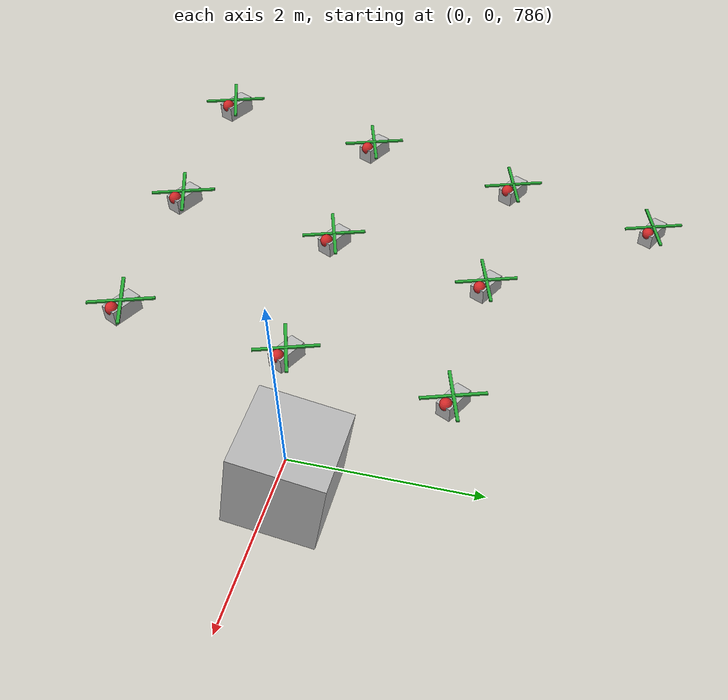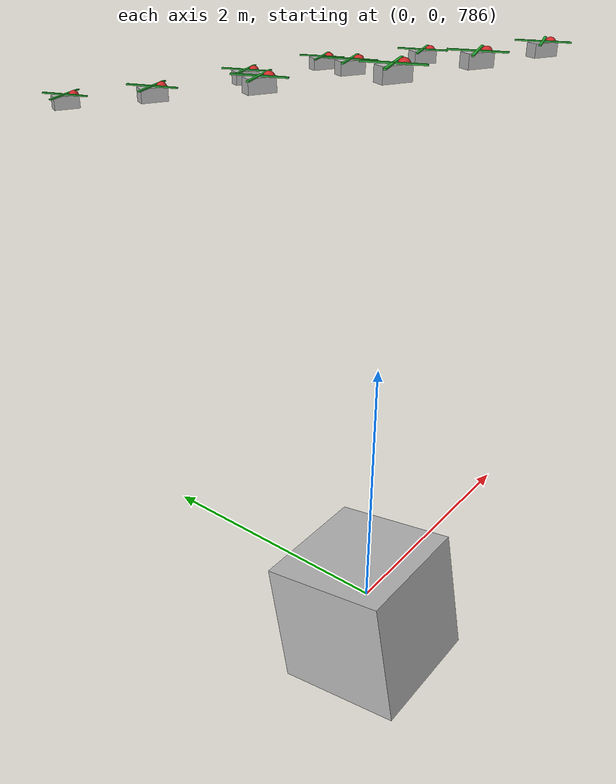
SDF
<sdf version="1.5">
 <world name="default">
  <model name="boo">
   <pose>0 0 785.866 -0.185171 0 0</pose>
   <static>1</static>
   <link name="link">
    <kinematic>1</kinematic>
    <collision name="collision">
     <geometry><box><size>1 1 1</size></box></geometry>
     <surface><friction><ode><mu>0</mu><mu2>0</mu2></ode></friction></surface>
    </collision>
    <visual name="visual"><geometry><box><size>1 1 1</size></box></geometry></visual>
   </link>
   <plugin name="boo" filename="libBooControllerPlugin.so">
    <lost_person_model>lost_person</lost_person_model>
    <address>boo</address>
    <type>boo</type>
    <swarm_search_area>
     <min_relative_latitude_deg>-0.01</min_relative_latitude_deg>
     <max_relative_latitude_deg>0.01</max_relative_latitude_deg>
     <min_relative_longitude_deg>-0.01</min_relative_longitude_deg>
     <max_relative_longitude_deg>0.01</max_relative_longitude_deg>
    </swarm_search_area>
   </plugin>
  </model>
  <model name="rotor_0">
   <pose>0 0 789.936 0 0 -0.452</pose>
   <link name="link">
    <sensor name="gps" type="gps">
     <gps>
      <position_sensing>
       <horizontal>
        <noise type="gaussian_quantized">
         <mean>0</mean>
         <stddev>4</stddev>
         <bias_mean>0</bias_mean>
         <bias_stddev>0</bias_stddev>
         <precision>0.001</precision>
        </noise>
       </horizontal>
       <vertical>
        <noise type="gaussian_quantized">
         <mean>0</mean>
         <stddev>8</stddev>
         <bias_mean>0</bias_mean>
         <bias_stddev>0</bias_stddev>
         <precision>0.01</precision>
        </noise>
       </vertical>
      </position_sensing>
      <velocity_sensing>
       <horizontal>
        <noise type="gaussian_quantized">
         <mean>0</mean>
         <stddev>4</stddev>
         <bias_mean>0</bias_mean>
         <bias_stddev>0</bias_stddev>
         <precision>0.001</precision>
        </noise>
       </horizontal>
       <vertical>
        <noise type="gaussian_quantized">
         <mean>0</mean>
         <stddev>8</stddev>
         <bias_mean>0</bias_mean>
         <bias_stddev>0</bias_stddev>
         <precision>0.01</precision>
        </noise>
       </vertical>
      </velocity_sensing>
     </gps>
     <always_on>1</always_on>
    </sensor>
    <sensor name="imu" type="imu">
     <imu>
      <angular_velocity>
       <x>
        <noise type="gaussian">
         <mean>0</mean>
         <stddev>0.0002</stddev>
         <bias_mean>7.5e-06</bias_mean>
         <bias_stddev>8e-07</bias_stddev>
        </noise>
       </x>
       <y>
        <noise type="gaussian">
         <mean>0</mean>
         <stddev>0.0002</stddev>
         <bias_mean>7.5e-06</bias_mean>
         <bias_stddev>8e-07</bias_stddev>
        </noise>
       </y>
       <z>
        <noise type="gaussian">
         <mean>0</mean>
         <stddev>0.0002</stddev>
         <bias_mean>7.5e-06</bias_mean>
         <bias_stddev>8e-07</bias_stddev>
        </noise>
       </z>
      </angular_velocity>
      <linear_acceleration>
       <x>
        <noise type="gaussian">
         <mean>0</mean>
         <stddev>0.0002</stddev>
         <bias_mean>7.5e-06</bias_mean>
         <bias_stddev>8e-07</bias_stddev>
        </noise>
       </x>
       <y>
        <noise type="gaussian">
         <mean>0</mean>
         <stddev>0.0002</stddev>
         <bias_mean>7.5e-06</bias_mean>
         <bias_stddev>8e-07</bias_stddev>
        </noise>
       </y>
       <z>
        <noise type="gaussian">
         <mean>0</mean>
         <stddev>0.0002</stddev>
         <bias_mean>7.5e-06</bias_mean>
         <bias_stddev>8e-07</bias_stddev>
        </noise>
       </z>
      </linear_acceleration>
     </imu>
     <always_on>1</always_on>
    </sensor>
    <sensor name="camera" type="logical_camera">
     <logical_camera>
      <near>0.1</near>
      <far>50</far>
      <horizontal_fov>1.4656</horizontal_fov>
      <aspect_ratio>1.778</aspect_ratio>
     </logical_camera>
     <visualize>0</visualize>
     <always_on>1</always_on>
    </sensor>
    <kinematic>1</kinematic>
    <gravity>0</gravity>
    <collision name="collision"><geometry><box><size>0.2 0.1 0.1</size></box></geometry></collision>
    <visual name="visual"><geometry><box><size>0.2 0.1 0.1</size></box></geometry></visual>
    <visual name="visual_front">
     <pose>0.07 0 0.04 0 -0 0</pose>
     <geometry><sphere><radius>0.04</radius></sphere></geometry>
     <material><script><name>Gazebo/Red</name><uri>__default__</uri></script></material>
    </visual>
    <visual name="visual_blade1">
     <pose>0 0 0.055 0 -0 0.78539</pose>
     <geometry><box><size>0.4 0.02 0.01</size></box></geometry>
     <material><script><name>Gazebo/Green</name><uri>__default__</uri></script></material>
    </visual>
    <visual name="visual_blade2">
     <pose>0 0 0.055 0 -0 2.3562</pose>
     <geometry><box><size>0.4 0.02 0.01</size></box></geometry>
     <material><script><name>Gazebo/Green</name><uri>__default__</uri></script></material>
    </visual>
    <inertial>
     <inertia><ixx>1</ixx><ixy>0</ixy><ixz>0</ixz><iyy>1</iyy><iyz>0</iyz><izz>1</izz></inertia>
     <mass>1</mass>
    </inertial>
   </link>
   <plugin name="swarm_controller_rotor_0" filename="libTeamControllerPlugin.so">
    <type>rotor</type>
    <camera>link::camera</camera>
    <gps>link::gps</gps>
    <imu>link::imu</imu>
    <address>192.168.1.1</address>
    <num_messages>1</num_messages>
    <swarm_search_area>
     <min_relative_latitude_deg>-0.01</min_relative_latitude_deg>
     <max_relative_latitude_deg>0.01</max_relative_latitude_deg>
     <min_relative_longitude_deg>-0.01</min_relative_longitude_deg>
     <max_relative_longitude_deg>0.01</max_relative_longitude_deg>
    </swarm_search_area>
    <battery>
     <capacity>3500</capacity>
     <consumption>1500</consumption>
     <consumption_factor>0.8</consumption_factor>
    </battery>
   </plugin>
  </model>
  <model name="rotor_1">
   <pose>1 0 789.873 0 0 -0.452</pose>
   <link name="link">
    <sensor name="gps" type="gps">
     <gps>
      <position_sensing>
       <horizontal>
        <noise type="gaussian_quantized">
         <mean>0</mean>
         <stddev>4</stddev>
         <bias_mean>0</bias_mean>
         <bias_stddev>0</bias_stddev>
         <precision>0.001</precision>
        </noise>
       </horizontal>
       <vertical>
        <noise type="gaussian_quantized">
         <mean>0</mean>
         <stddev>8</stddev>
         <bias_mean>0</bias_mean>
         <bias_stddev>0</bias_stddev>
         <precision>0.01</precision>
        </noise>
       </vertical>
      </position_sensing>
      <velocity_sensing>
       <horizontal>
        <noise type="gaussian_quantized">
         <mean>0</mean>
         <stddev>4</stddev>
         <bias_mean>0</bias_mean>
         <bias_stddev>0</bias_stddev>
         <precision>0.001</precision>
        </noise>
       </horizontal>
       <vertical>
        <noise type="gaussian_quantized">
         <mean>0</mean>
         <stddev>8</stddev>
         <bias_mean>0</bias_mean>
         <bias_stddev>0</bias_stddev>
         <precision>0.01</precision>
        </noise>
       </vertical>
      </velocity_sensing>
     </gps>
     <always_on>1</always_on>
    </sensor>
    <sensor name="imu" type="imu">
     <imu>
      <angular_velocity>
       <x>
        <noise type="gaussian">
         <mean>0</mean>
         <stddev>0.0002</stddev>
         <bias_mean>7.5e-06</bias_mean>
         <bias_stddev>8e-07</bias_stddev>
        </noise>
       </x>
       <y>
        <noise type="gaussian">
         <mean>0</mean>
         <stddev>0.0002</stddev>
         <bias_mean>7.5e-06</bias_mean>
         <bias_stddev>8e-07</bias_stddev>
        </noise>
       </y>
       <z>
        <noise type="gaussian">
         <mean>0</mean>
         <stddev>0.0002</stddev>
         <bias_mean>7.5e-06</bias_mean>
         <bias_stddev>8e-07</bias_stddev>
        </noise>
       </z>
      </angular_velocity>
      <linear_acceleration>
       <x>
        <noise type="gaussian">
         <mean>0</mean>
         <stddev>0.0002</stddev>
         <bias_mean>7.5e-06</bias_mean>
         <bias_stddev>8e-07</bias_stddev>
        </noise>
       </x>
       <y>
        <noise type="gaussian">
         <mean>0</mean>
         <stddev>0.0002</stddev>
         <bias_mean>7.5e-06</bias_mean>
         <bias_stddev>8e-07</bias_stddev>
        </noise>
       </y>
       <z>
        <noise type="gaussian">
         <mean>0</mean>
         <stddev>0.0002</stddev>
         <bias_mean>7.5e-06</bias_mean>
         <bias_stddev>8e-07</bias_stddev>
        </noise>
       </z>
      </linear_acceleration>
     </imu>
     <always_on>1</always_on>
    </sensor>
    <sensor name="camera" type="logical_camera">
     <logical_camera>
      <near>0.1</near>
      <far>50</far>
      <horizontal_fov>1.4656</horizontal_fov>
      <aspect_ratio>1.778</aspect_ratio>
     </logical_camera>
     <visualize>0</visualize>
     <always_on>1</always_on>
    </sensor>
    <kinematic>1</kinematic>
    <gravity>0</gravity>
    <collision name="collision"><geometry><box><size>0.2 0.1 0.1</size></box></geometry></collision>
    <visual name="visual"><geometry><box><size>0.2 0.1 0.1</size></box></geometry></visual>
    <visual name="visual_front">
     <pose>0.07 0 0.04 0 -0 0</pose>
     <geometry><sphere><radius>0.04</radius></sphere></geometry>
     <material><script><name>Gazebo/Red</name><uri>__default__</uri></script></material>
    </visual>
    <visual name="visual_blade1">
     <pose>0 0 0.055 0 -0 0.78539</pose>
     <geometry><box><size>0.4 0.02 0.01</size></box></geometry>
     <material><script><name>Gazebo/Green</name><uri>__default__</uri></script></material>
    </visual>
    <visual name="visual_blade2">
     <pose>0 0 0.055 0 -0 2.3562</pose>
     <geometry><box><size>0.4 0.02 0.01</size></box></geometry>
     <material><script><name>Gazebo/Green</name><uri>__default__</uri></script></material>
    </visual>
    <inertial>
     <inertia><ixx>1</ixx><ixy>0</ixy><ixz>0</ixz><iyy>1</iyy><iyz>0</iyz><izz>1</izz></inertia>
     <mass>1</mass>
    </inertial>
   </link>
   <plugin name="swarm_controller_rotor_1" filename="libTeamControllerPlugin.so">
    <type>rotor</type>
    <camera>link::camera</camera>
    <gps>link::gps</gps>
    <imu>link::imu</imu>
    <address>192.168.1.2</address>
    <num_messages>1</num_messages>
    <swarm_search_area>
     <min_relative_latitude_deg>-0.01</min_relative_latitude_deg>
     <max_relative_latitude_deg>0.01</max_relative_latitude_deg>
     <min_relative_longitude_deg>-0.01</min_relative_longitude_deg>
     <max_relative_longitude_deg>0.01</max_relative_longitude_deg>
    </swarm_search_area>
    <battery>
     <capacity>3500</capacity>
     <consumption>1500</consumption>
     <consumption_factor>0.8</consumption_factor>
    </battery>
   </plugin>
  </model>
  <model name="rotor_2">
   <pose>2 0 789.811 0 0 -0.452</pose>
   <link name="link">
    <sensor name="gps" type="gps">
     <gps>
      <position_sensing>
       <horizontal>
        <noise type="gaussian_quantized">
         <mean>0</mean>
         <stddev>4</stddev>
         <bias_mean>0</bias_mean>
         <bias_stddev>0</bias_stddev>
         <precision>0.001</precision>
        </noise>
       </horizontal>
       <vertical>
        <noise type="gaussian_quantized">
         <mean>0</mean>
         <stddev>8</stddev>
         <bias_mean>0</bias_mean>
         <bias_stddev>0</bias_stddev>
         <precision>0.01</precision>
        </noise>
       </vertical>
      </position_sensing>
      <velocity_sensing>
       <horizontal>
        <noise type="gaussian_quantized">
         <mean>0</mean>
         <stddev>4</stddev>
         <bias_mean>0</bias_mean>
         <bias_stddev>0</bias_stddev>
         <precision>0.001</precision>
        </noise>
       </horizontal>
       <vertical>
        <noise type="gaussian_quantized">
         <mean>0</mean>
         <stddev>8</stddev>
         <bias_mean>0</bias_mean>
         <bias_stddev>0</bias_stddev>
         <precision>0.01</precision>
        </noise>
       </vertical>
      </velocity_sensing>
     </gps>
     <always_on>1</always_on>
    </sensor>
    <sensor name="imu" type="imu">
     <imu>
      <angular_velocity>
       <x>
        <noise type="gaussian">
         <mean>0</mean>
         <stddev>0.0002</stddev>
         <bias_mean>7.5e-06</bias_mean>
         <bias_stddev>8e-07</bias_stddev>
        </noise>
       </x>
       <y>
        <noise type="gaussian">
         <mean>0</mean>
         <stddev>0.0002</stddev>
         <bias_mean>7.5e-06</bias_mean>
         <bias_stddev>8e-07</bias_stddev>
        </noise>
       </y>
       <z>
        <noise type="gaussian">
         <mean>0</mean>
         <stddev>0.0002</stddev>
         <bias_mean>7.5e-06</bias_mean>
         <bias_stddev>8e-07</bias_stddev>
        </noise>
       </z>
      </angular_velocity>
      <linear_acceleration>
       <x>
        <noise type="gaussian">
         <mean>0</mean>
         <stddev>0.0002</stddev>
         <bias_mean>7.5e-06</bias_mean>
         <bias_stddev>8e-07</bias_stddev>
        </noise>
       </x>
       <y>
        <noise type="gaussian">
         <mean>0</mean>
         <stddev>0.0002</stddev>
         <bias_mean>7.5e-06</bias_mean>
         <bias_stddev>8e-07</bias_stddev>
        </noise>
       </y>
       <z>
        <noise type="gaussian">
         <mean>0</mean>
         <stddev>0.0002</stddev>
         <bias_mean>7.5e-06</bias_mean>
         <bias_stddev>8e-07</bias_stddev>
        </noise>
       </z>
      </linear_acceleration>
     </imu>
     <always_on>1</always_on>
    </sensor>
    <sensor name="camera" type="logical_camera">
     <logical_camera>
      <near>0.1</near>
      <far>50</far>
      <horizontal_fov>1.4656</horizontal_fov>
      <aspect_ratio>1.778</aspect_ratio>
     </logical_camera>
     <visualize>0</visualize>
     <always_on>1</always_on>
    </sensor>
    <kinematic>1</kinematic>
    <gravity>0</gravity>
    <collision name="collision"><geometry><box><size>0.2 0.1 0.1</size></box></geometry></collision>
    <visual name="visual"><geometry><box><size>0.2 0.1 0.1</size></box></geometry></visual>
    <visual name="visual_front">
     <pose>0.07 0 0.04 0 -0 0</pose>
     <geometry><sphere><radius>0.04</radius></sphere></geometry>
     <material><script><name>Gazebo/Red</name><uri>__default__</uri></script></material>
    </visual>
    <visual name="visual_blade1">
     <pose>0 0 0.055 0 -0 0.78539</pose>
     <geometry><box><size>0.4 0.02 0.01</size></box></geometry>
     <material><script><name>Gazebo/Green</name><uri>__default__</uri></script></material>
    </visual>
    <visual name="visual_blade2">
     <pose>0 0 0.055 0 -0 2.3562</pose>
     <geometry><box><size>0.4 0.02 0.01</size></box></geometry>
     <material><script><name>Gazebo/Green</name><uri>__default__</uri></script></material>
    </visual>
    <inertial>
     <inertia><ixx>1</ixx><ixy>0</ixy><ixz>0</ixz><iyy>1</iyy><iyz>0</iyz><izz>1</izz></inertia>
     <mass>1</mass>
    </inertial>
   </link>
   <plugin name="swarm_controller_rotor_2" filename="libTeamControllerPlugin.so">
    <type>rotor</type>
    <camera>link::camera</camera>
    <gps>link::gps</gps>
    <imu>link::imu</imu>
    <address>192.168.1.3</address>
    <num_messages>1</num_messages>
    <swarm_search_area>
     <min_relative_latitude_deg>-0.01</min_relative_latitude_deg>
     <max_relative_latitude_deg>0.01</max_relative_latitude_deg>
     <min_relative_longitude_deg>-0.01</min_relative_longitude_deg>
     <max_relative_longitude_deg>0.01</max_relative_longitude_deg>
    </swarm_search_area>
    <battery>
     <capacity>3500</capacity>
     <consumption>1500</consumption>
     <consumption_factor>0.8</consumption_factor>
    </battery>
   </plugin>
  </model>
  <model name="rotor_6">
   <pose>0 1 789.749 0 0 -0.452</pose>
   <link name="link">
    <sensor name="gps" type="gps">
     <gps>
      <position_sensing>
       <horizontal>
        <noise type="gaussian_quantized">
         <mean>0</mean>
         <stddev>4</stddev>
         <bias_mean>0</bias_mean>
         <bias_stddev>0</bias_stddev>
         <precision>0.001</precision>
        </noise>
       </horizontal>
       <vertical>
        <noise type="gaussian_quantized">
         <mean>0</mean>
         <stddev>8</stddev>
         <bias_mean>0</bias_mean>
         <bias_stddev>0</bias_stddev>
         <precision>0.01</precision>
        </noise>
       </vertical>
      </position_sensing>
      <velocity_sensing>
       <horizontal>
        <noise type="gaussian_quantized">
         <mean>0</mean>
         <stddev>4</stddev>
         <bias_mean>0</bias_mean>
         <bias_stddev>0</bias_stddev>
         <precision>0.001</precision>
        </noise>
       </horizontal>
       <vertical>
        <noise type="gaussian_quantized">
         <mean>0</mean>
         <stddev>8</stddev>
         <bias_mean>0</bias_mean>
         <bias_stddev>0</bias_stddev>
         <precision>0.01</precision>
        </noise>
       </vertical>
      </velocity_sensing>
     </gps>
     <always_on>1</always_on>
    </sensor>
    <sensor name="imu" type="imu">
     <imu>
      <angular_velocity>
       <x>
        <noise type="gaussian">
         <mean>0</mean>
         <stddev>0.0002</stddev>
         <bias_mean>7.5e-06</bias_mean>
         <bias_stddev>8e-07</bias_stddev>
        </noise>
       </x>
       <y>
        <noise type="gaussian">
         <mean>0</mean>
         <stddev>0.0002</stddev>
         <bias_mean>7.5e-06</bias_mean>
         <bias_stddev>8e-07</bias_stddev>
        </noise>
       </y>
       <z>
        <noise type="gaussian">
         <mean>0</mean>
         <stddev>0.0002</stddev>
         <bias_mean>7.5e-06</bias_mean>
         <bias_stddev>8e-07</bias_stddev>
        </noise>
       </z>
      </angular_velocity>
      <linear_acceleration>
       <x>
        <noise type="gaussian">
         <mean>0</mean>
         <stddev>0.0002</stddev>
         <bias_mean>7.5e-06</bias_mean>
         <bias_stddev>8e-07</bias_stddev>
        </noise>
       </x>
       <y>
        <noise type="gaussian">
         <mean>0</mean>
         <stddev>0.0002</stddev>
         <bias_mean>7.5e-06</bias_mean>
         <bias_stddev>8e-07</bias_stddev>
        </noise>
       </y>
       <z>
        <noise type="gaussian">
         <mean>0</mean>
         <stddev>0.0002</stddev>
         <bias_mean>7.5e-06</bias_mean>
         <bias_stddev>8e-07</bias_stddev>
        </noise>
       </z>
      </linear_acceleration>
     </imu>
     <always_on>1</always_on>
    </sensor>
    <sensor name="camera" type="logical_camera">
     <logical_camera>
      <near>0.1</near>
      <far>50</far>
      <horizontal_fov>1.4656</horizontal_fov>
      <aspect_ratio>1.778</aspect_ratio>
     </logical_camera>
     <visualize>0</visualize>
     <always_on>1</always_on>
    </sensor>
    <kinematic>1</kinematic>
    <gravity>0</gravity>
    <collision name="collision"><geometry><box><size>0.2 0.1 0.1</size></box></geometry></collision>
    <visual name="visual"><geometry><box><size>0.2 0.1 0.1</size></box></geometry></visual>
    <visual name="visual_front">
     <pose>0.07 0 0.04 0 -0 0</pose>
     <geometry><sphere><radius>0.04</radius></sphere></geometry>
     <material><script><name>Gazebo/Red</name><uri>__default__</uri></script></material>
    </visual>
    <visual name="visual_blade1">
     <pose>0 0 0.055 0 -0 0.78539</pose>
     <geometry><box><size>0.4 0.02 0.01</size></box></geometry>
     <material><script><name>Gazebo/Green</name><uri>__default__</uri></script></material>
    </visual>
    <visual name="visual_blade2">
     <pose>0 0 0.055 0 -0 2.3562</pose>
     <geometry><box><size>0.4 0.02 0.01</size></box></geometry>
     <material><script><name>Gazebo/Green</name><uri>__default__</uri></script></material>
    </visual>
    <inertial>
     <inertia><ixx>1</ixx><ixy>0</ixy><ixz>0</ixz><iyy>1</iyy><iyz>0</iyz><izz>1</izz></inertia>
     <mass>1</mass>
    </inertial>
   </link>
   <plugin name="swarm_controller_rotor_6" filename="libTeamControllerPlugin.so">
    <type>rotor</type>
    <camera>link::camera</camera>
    <gps>link::gps</gps>
    <imu>link::imu</imu>
    <address>192.168.1.7</address>
    <num_messages>1</num_messages>
    <swarm_search_area>
     <min_relative_latitude_deg>-0.01</min_relative_latitude_deg>
     <max_relative_latitude_deg>0.01</max_relative_latitude_deg>
     <min_relative_longitude_deg>-0.01</min_relative_longitude_deg>
     <max_relative_longitude_deg>0.01</max_relative_longitude_deg>
    </swarm_search_area>
    <battery>
     <capacity>3500</capacity>
     <consumption>1500</consumption>
     <consumption_factor>0.8</consumption_factor>
    </battery>
   </plugin>
  </model>
  <model name="rotor_7">
   <pose>1 1 789.717 0 0 -0.452</pose>
   <link name="link">
    <sensor name="gps" type="gps">
     <gps>
      <position_sensing>
       <horizontal>
        <noise type="gaussian_quantized">
         <mean>0</mean>
         <stddev>4</stddev>
         <bias_mean>0</bias_mean>
         <bias_stddev>0</bias_stddev>
         <precision>0.001</precision>
        </noise>
       </horizontal>
       <vertical>
        <noise type="gaussian_quantized">
         <mean>0</mean>
         <stddev>8</stddev>
         <bias_mean>0</bias_mean>
         <bias_stddev>0</bias_stddev>
         <precision>0.01</precision>
        </noise>
       </vertical>
      </position_sensing>
      <velocity_sensing>
       <horizontal>
        <noise type="gaussian_quantized">
         <mean>0</mean>
         <stddev>4</stddev>
         <bias_mean>0</bias_mean>
         <bias_stddev>0</bias_stddev>
         <precision>0.001</precision>
        </noise>
       </horizontal>
       <vertical>
        <noise type="gaussian_quantized">
         <mean>0</mean>
         <stddev>8</stddev>
         <bias_mean>0</bias_mean>
         <bias_stddev>0</bias_stddev>
         <precision>0.01</precision>
        </noise>
       </vertical>
      </velocity_sensing>
     </gps>
     <always_on>1</always_on>
    </sensor>
    <sensor name="imu" type="imu">
     <imu>
      <angular_velocity>
       <x>
        <noise type="gaussian">
         <mean>0</mean>
         <stddev>0.0002</stddev>
         <bias_mean>7.5e-06</bias_mean>
         <bias_stddev>8e-07</bias_stddev>
        </noise>
       </x>
       <y>
        <noise type="gaussian">
         <mean>0</mean>
         <stddev>0.0002</stddev>
         <bias_mean>7.5e-06</bias_mean>
         <bias_stddev>8e-07</bias_stddev>
        </noise>
       </y>
       <z>
        <noise type="gaussian">
         <mean>0</mean>
         <stddev>0.0002</stddev>
         <bias_mean>7.5e-06</bias_mean>
         <bias_stddev>8e-07</bias_stddev>
        </noise>
       </z>
      </angular_velocity>
      <linear_acceleration>
       <x>
        <noise type="gaussian">
         <mean>0</mean>
         <stddev>0.0002</stddev>
         <bias_mean>7.5e-06</bias_mean>
         <bias_stddev>8e-07</bias_stddev>
        </noise>
       </x>
       <y>
        <noise type="gaussian">
         <mean>0</mean>
         <stddev>0.0002</stddev>
         <bias_mean>7.5e-06</bias_mean>
         <bias_stddev>8e-07</bias_stddev>
        </noise>
       </y>
       <z>
        <noise type="gaussian">
         <mean>0</mean>
         <stddev>0.0002</stddev>
         <bias_mean>7.5e-06</bias_mean>
         <bias_stddev>8e-07</bias_stddev>
        </noise>
       </z>
      </linear_acceleration>
     </imu>
     <always_on>1</always_on>
    </sensor>
    <sensor name="camera" type="logical_camera">
     <logical_camera>
      <near>0.1</near>
      <far>50</far>
      <horizontal_fov>1.4656</horizontal_fov>
      <aspect_ratio>1.778</aspect_ratio>
     </logical_camera>
     <visualize>0</visualize>
     <always_on>1</always_on>
    </sensor>
    <kinematic>1</kinematic>
    <gravity>0</gravity>
    <collision name="collision"><geometry><box><size>0.2 0.1 0.1</size></box></geometry></collision>
    <visual name="visual"><geometry><box><size>0.2 0.1 0.1</size></box></geometry></visual>
    <visual name="visual_front">
     <pose>0.07 0 0.04 0 -0 0</pose>
     <geometry><sphere><radius>0.04</radius></sphere></geometry>
     <material><script><name>Gazebo/Red</name><uri>__default__</uri></script></material>
    </visual>
    <visual name="visual_blade1">
     <pose>0 0 0.055 0 -0 0.78539</pose>
     <geometry><box><size>0.4 0.02 0.01</size></box></geometry>
     <material><script><name>Gazebo/Green</name><uri>__default__</uri></script></material>
    </visual>
    <visual name="visual_blade2">
     <pose>0 0 0.055 0 -0 2.3562</pose>
     <geometry><box><size>0.4 0.02 0.01</size></box></geometry>
     <material><script><name>Gazebo/Green</name><uri>__default__</uri></script></material>
    </visual>
    <inertial>
     <inertia><ixx>1</ixx><ixy>0</ixy><ixz>0</ixz><iyy>1</iyy><iyz>0</iyz><izz>1</izz></inertia>
     <mass>1</mass>
    </inertial>
   </link>
   <plugin name="swarm_controller_rotor_7" filename="libTeamControllerPlugin.so">
    <type>rotor</type>
    <camera>link::camera</camera>
    <gps>link::gps</gps>
    <imu>link::imu</imu>
    <address>192.168.1.8</address>
    <num_messages>1</num_messages>
    <swarm_search_area>
     <min_relative_latitude_deg>-0.01</min_relative_latitude_deg>
     <max_relative_latitude_deg>0.01</max_relative_latitude_deg>
     <min_relative_longitude_deg>-0.01</min_relative_longitude_deg>
     <max_relative_longitude_deg>0.01</max_relative_longitude_deg>
    </swarm_search_area>
    <battery>
     <capacity>3500</capacity>
     <consumption>1500</consumption>
     <consumption_factor>0.8</consumption_factor>
    </battery>
   </plugin>
  </model>
  <model name="rotor_8">
   <pose>2 1 789.655 0 0 -0.452</pose>
   <link name="link">
    <sensor name="gps" type="gps">
     <gps>
      <position_sensing>
       <horizontal>
        <noise type="gaussian_quantized">
         <mean>0</mean>
         <stddev>4</stddev>
         <bias_mean>0</bias_mean>
         <bias_stddev>0</bias_stddev>
         <precision>0.001</precision>
        </noise>
       </horizontal>
       <vertical>
        <noise type="gaussian_quantized">
         <mean>0</mean>
         <stddev>8</stddev>
         <bias_mean>0</bias_mean>
         <bias_stddev>0</bias_stddev>
         <precision>0.01</precision>
        </noise>
       </vertical>
      </position_sensing>
      <velocity_sensing>
       <horizontal>
        <noise type="gaussian_quantized">
         <mean>0</mean>
         <stddev>4</stddev>
         <bias_mean>0</bias_mean>
         <bias_stddev>0</bias_stddev>
         <precision>0.001</precision>
        </noise>
       </horizontal>
       <vertical>
        <noise type="gaussian_quantized">
         <mean>0</mean>
         <stddev>8</stddev>
         <bias_mean>0</bias_mean>
         <bias_stddev>0</bias_stddev>
         <precision>0.01</precision>
        </noise>
       </vertical>
      </velocity_sensing>
     </gps>
     <always_on>1</always_on>
    </sensor>
    <sensor name="imu" type="imu">
     <imu>
      <angular_velocity>
       <x>
        <noise type="gaussian">
         <mean>0</mean>
         <stddev>0.0002</stddev>
         <bias_mean>7.5e-06</bias_mean>
         <bias_stddev>8e-07</bias_stddev>
        </noise>
       </x>
       <y>
        <noise type="gaussian">
         <mean>0</mean>
         <stddev>0.0002</stddev>
         <bias_mean>7.5e-06</bias_mean>
         <bias_stddev>8e-07</bias_stddev>
        </noise>
       </y>
       <z>
        <noise type="gaussian">
         <mean>0</mean>
         <stddev>0.0002</stddev>
         <bias_mean>7.5e-06</bias_mean>
         <bias_stddev>8e-07</bias_stddev>
        </noise>
       </z>
      </angular_velocity>
      <linear_acceleration>
       <x>
        <noise type="gaussian">
         <mean>0</mean>
         <stddev>0.0002</stddev>
         <bias_mean>7.5e-06</bias_mean>
         <bias_stddev>8e-07</bias_stddev>
        </noise>
       </x>
       <y>
        <noise type="gaussian">
         <mean>0</mean>
         <stddev>0.0002</stddev>
         <bias_mean>7.5e-06</bias_mean>
         <bias_stddev>8e-07</bias_stddev>
        </noise>
       </y>
       <z>
        <noise type="gaussian">
         <mean>0</mean>
         <stddev>0.0002</stddev>
         <bias_mean>7.5e-06</bias_mean>
         <bias_stddev>8e-07</bias_stddev>
        </noise>
       </z>
      </linear_acceleration>
     </imu>
     <always_on>1</always_on>
    </sensor>
    <sensor name="camera" type="logical_camera">
     <logical_camera>
      <near>0.1</near>
      <far>50</far>
      <horizontal_fov>1.4656</horizontal_fov>
      <aspect_ratio>1.778</aspect_ratio>
     </logical_camera>
     <visualize>0</visualize>
     <always_on>1</always_on>
    </sensor>
    <kinematic>1</kinematic>
    <gravity>0</gravity>
    <collision name="collision"><geometry><box><size>0.2 0.1 0.1</size></box></geometry></collision>
    <visual name="visual"><geometry><box><size>0.2 0.1 0.1</size></box></geometry></visual>
    <visual name="visual_front">
     <pose>0.07 0 0.04 0 -0 0</pose>
     <geometry><sphere><radius>0.04</radius></sphere></geometry>
     <material><script><name>Gazebo/Red</name><uri>__default__</uri></script></material>
    </visual>
    <visual name="visual_blade1">
     <pose>0 0 0.055 0 -0 0.78539</pose>
     <geometry><box><size>0.4 0.02 0.01</size></box></geometry>
     <material><script><name>Gazebo/Green</name><uri>__default__</uri></script></material>
    </visual>
    <visual name="visual_blade2">
     <pose>0 0 0.055 0 -0 2.3562</pose>
     <geometry><box><size>0.4 0.02 0.01</size></box></geometry>
     <material><script><name>Gazebo/Green</name><uri>__default__</uri></script></material>
    </visual>
    <inertial>
     <inertia><ixx>1</ixx><ixy>0</ixy><ixz>0</ixz><iyy>1</iyy><iyz>0</iyz><izz>1</izz></inertia>
     <mass>1</mass>
    </inertial>
   </link>
   <plugin name="swarm_controller_rotor_8" filename="libTeamControllerPlugin.so">
    <type>rotor</type>
    <camera>link::camera</camera>
    <gps>link::gps</gps>
    <imu>link::imu</imu>
    <address>192.168.1.9</address>
    <num_messages>1</num_messages>
    <swarm_search_area>
     <min_relative_latitude_deg>-0.01</min_relative_latitude_deg>
     <max_relative_latitude_deg>0.01</max_relative_latitude_deg>
     <min_relative_longitude_deg>-0.01</min_relative_longitude_deg>
     <max_relative_longitude_deg>0.01</max_relative_longitude_deg>
    </swarm_search_area>
    <battery>
     <capacity>3500</capacity>
     <consumption>1500</consumption>
     <consumption_factor>0.8</consumption_factor>
    </battery>
   </plugin>
  </model>
  <model name="rotor_12">
   <pose>0 2 789.561 0 0 -0.452</pose>
   <link name="link">
    <sensor name="gps" type="gps">
     <gps>
      <position_sensing>
       <horizontal>
        <noise type="gaussian_quantized">
         <mean>0</mean>
         <stddev>4</stddev>
         <bias_mean>0</bias_mean>
         <bias_stddev>0</bias_stddev>
         <precision>0.001</precision>
        </noise>
       </horizontal>
       <vertical>
        <noise type="gaussian_quantized">
         <mean>0</mean>
         <stddev>8</stddev>
         <bias_mean>0</bias_mean>
         <bias_stddev>0</bias_stddev>
         <precision>0.01</precision>
        </noise>
       </vertical>
      </position_sensing>
      <velocity_sensing>
       <horizontal>
        <noise type="gaussian_quantized">
         <mean>0</mean>
         <stddev>4</stddev>
         <bias_mean>0</bias_mean>
         <bias_stddev>0</bias_stddev>
         <precision>0.001</precision>
        </noise>
       </horizontal>
       <vertical>
        <noise type="gaussian_quantized">
         <mean>0</mean>
         <stddev>8</stddev>
         <bias_mean>0</bias_mean>
         <bias_stddev>0</bias_stddev>
         <precision>0.01</precision>
        </noise>
       </vertical>
      </velocity_sensing>
     </gps>
     <always_on>1</always_on>
    </sensor>
    <sensor name="imu" type="imu">
     <imu>
      <angular_velocity>
       <x>
        <noise type="gaussian">
         <mean>0</mean>
         <stddev>0.0002</stddev>
         <bias_mean>7.5e-06</bias_mean>
         <bias_stddev>8e-07</bias_stddev>
        </noise>
       </x>
       <y>
        <noise type="gaussian">
         <mean>0</mean>
         <stddev>0.0002</stddev>
         <bias_mean>7.5e-06</bias_mean>
         <bias_stddev>8e-07</bias_stddev>
        </noise>
       </y>
       <z>
        <noise type="gaussian">
         <mean>0</mean>
         <stddev>0.0002</stddev>
         <bias_mean>7.5e-06</bias_mean>
         <bias_stddev>8e-07</bias_stddev>
        </noise>
       </z>
      </angular_velocity>
      <linear_acceleration>
       <x>
        <noise type="gaussian">
         <mean>0</mean>
         <stddev>0.0002</stddev>
         <bias_mean>7.5e-06</bias_mean>
         <bias_stddev>8e-07</bias_stddev>
        </noise>
       </x>
       <y>
        <noise type="gaussian">
         <mean>0</mean>
         <stddev>0.0002</stddev>
         <bias_mean>7.5e-06</bias_mean>
         <bias_stddev>8e-07</bias_stddev>
        </noise>
       </y>
       <z>
        <noise type="gaussian">
         <mean>0</mean>
         <stddev>0.0002</stddev>
         <bias_mean>7.5e-06</bias_mean>
         <bias_stddev>8e-07</bias_stddev>
        </noise>
       </z>
      </linear_acceleration>
     </imu>
     <always_on>1</always_on>
    </sensor>
    <sensor name="camera" type="logical_camera">
     <logical_camera>
      <near>0.1</near>
      <far>50</far>
      <horizontal_fov>1.4656</horizontal_fov>
      <aspect_ratio>1.778</aspect_ratio>
     </logical_camera>
     <visualize>0</visualize>
     <always_on>1</always_on>
    </sensor>
    <kinematic>1</kinematic>
    <gravity>0</gravity>
    <collision name="collision"><geometry><box><size>0.2 0.1 0.1</size></box></geometry></collision>
    <visual name="visual"><geometry><box><size>0.2 0.1 0.1</size></box></geometry></visual>
    <visual name="visual_front">
     <pose>0.07 0 0.04 0 -0 0</pose>
     <geometry><sphere><radius>0.04</radius></sphere></geometry>
     <material><script><name>Gazebo/Red</name><uri>__default__</uri></script></material>
    </visual>
    <visual name="visual_blade1">
     <pose>0 0 0.055 0 -0 0.78539</pose>
     <geometry><box><size>0.4 0.02 0.01</size></box></geometry>
     <material><script><name>Gazebo/Green</name><uri>__default__</uri></script></material>
    </visual>
    <visual name="visual_blade2">
     <pose>0 0 0.055 0 -0 2.3562</pose>
     <geometry><box><size>0.4 0.02 0.01</size></box></geometry>
     <material><script><name>Gazebo/Green</name><uri>__default__</uri></script></material>
    </visual>
    <inertial>
     <inertia><ixx>1</ixx><ixy>0</ixy><ixz>0</ixz><iyy>1</iyy><iyz>0</iyz><izz>1</izz></inertia>
     <mass>1</mass>
    </inertial>
   </link>
   <plugin name="swarm_controller_rotor_12" filename="libTeamControllerPlugin.so">
    <type>rotor</type>
    <camera>link::camera</camera>
    <gps>link::gps</gps>
    <imu>link::imu</imu>
    <address>192.168.1.13</address>
    <num_messages>1</num_messages>
    <swarm_search_area>
     <min_relative_latitude_deg>-0.01</min_relative_latitude_deg>
     <max_relative_latitude_deg>0.01</max_relative_latitude_deg>
     <min_relative_longitude_deg>-0.01</min_relative_longitude_deg>
     <max_relative_longitude_deg>0.01</max_relative_longitude_deg>
    </swarm_search_area>
    <battery>
     <capacity>3500</capacity>
     <consumption>1500</consumption>
     <consumption_factor>0.8</consumption_factor>
    </battery>
   </plugin>
  </model>
  <model name="rotor_13">
   <pose>1 2 789.53 0 0 -0.452</pose>
   <link name="link">
    <sensor name="gps" type="gps">
     <gps>
      <position_sensing>
       <horizontal>
        <noise type="gaussian_quantized">
         <mean>0</mean>
         <stddev>4</stddev>
         <bias_mean>0</bias_mean>
         <bias_stddev>0</bias_stddev>
         <precision>0.001</precision>
        </noise>
       </horizontal>
       <vertical>
        <noise type="gaussian_quantized">
         <mean>0</mean>
         <stddev>8</stddev>
         <bias_mean>0</bias_mean>
         <bias_stddev>0</bias_stddev>
         <precision>0.01</precision>
        </noise>
       </vertical>
      </position_sensing>
      <velocity_sensing>
       <horizontal>
        <noise type="gaussian_quantized">
         <mean>0</mean>
         <stddev>4</stddev>
         <bias_mean>0</bias_mean>
         <bias_stddev>0</bias_stddev>
         <precision>0.001</precision>
        </noise>
       </horizontal>
       <vertical>
        <noise type="gaussian_quantized">
         <mean>0</mean>
         <stddev>8</stddev>
         <bias_mean>0</bias_mean>
         <bias_stddev>0</bias_stddev>
         <precision>0.01</precision>
        </noise>
       </vertical>
      </velocity_sensing>
     </gps>
     <always_on>1</always_on>
    </sensor>
    <sensor name="imu" type="imu">
     <imu>
      <angular_velocity>
       <x>
        <noise type="gaussian">
         <mean>0</mean>
         <stddev>0.0002</stddev>
         <bias_mean>7.5e-06</bias_mean>
         <bias_stddev>8e-07</bias_stddev>
        </noise>
       </x>
       <y>
        <noise type="gaussian">
         <mean>0</mean>
         <stddev>0.0002</stddev>
         <bias_mean>7.5e-06</bias_mean>
         <bias_stddev>8e-07</bias_stddev>
        </noise>
       </y>
       <z>
        <noise type="gaussian">
         <mean>0</mean>
         <stddev>0.0002</stddev>
         <bias_mean>7.5e-06</bias_mean>
         <bias_stddev>8e-07</bias_stddev>
        </noise>
       </z>
      </angular_velocity>
      <linear_acceleration>
       <x>
        <noise type="gaussian">
         <mean>0</mean>
         <stddev>0.0002</stddev>
         <bias_mean>7.5e-06</bias_mean>
         <bias_stddev>8e-07</bias_stddev>
        </noise>
       </x>
       <y>
        <noise type="gaussian">
         <mean>0</mean>
         <stddev>0.0002</stddev>
         <bias_mean>7.5e-06</bias_mean>
         <bias_stddev>8e-07</bias_stddev>
        </noise>
       </y>
       <z>
        <noise type="gaussian">
         <mean>0</mean>
         <stddev>0.0002</stddev>
         <bias_mean>7.5e-06</bias_mean>
         <bias_stddev>8e-07</bias_stddev>
        </noise>
       </z>
      </linear_acceleration>
     </imu>
     <always_on>1</always_on>
    </sensor>
    <sensor name="camera" type="logical_camera">
     <logical_camera>
      <near>0.1</near>
      <far>50</far>
      <horizontal_fov>1.4656</horizontal_fov>
      <aspect_ratio>1.778</aspect_ratio>
     </logical_camera>
     <visualize>0</visualize>
     <always_on>1</always_on>
    </sensor>
    <kinematic>1</kinematic>
    <gravity>0</gravity>
    <collision name="collision"><geometry><box><size>0.2 0.1 0.1</size></box></geometry></collision>
    <visual name="visual"><geometry><box><size>0.2 0.1 0.1</size></box></geometry></visual>
    <visual name="visual_front">
     <pose>0.07 0 0.04 0 -0 0</pose>
     <geometry><sphere><radius>0.04</radius></sphere></geometry>
     <material><script><name>Gazebo/Red</name><uri>__default__</uri></script></material>
    </visual>
    <visual name="visual_blade1">
     <pose>0 0 0.055 0 -0 0.78539</pose>
     <geometry><box><size>0.4 0.02 0.01</size></box></geometry>
     <material><script><name>Gazebo/Green</name><uri>__default__</uri></script></material>
    </visual>
    <visual name="visual_blade2">
     <pose>0 0 0.055 0 -0 2.3562</pose>
     <geometry><box><size>0.4 0.02 0.01</size></box></geometry>
     <material><script><name>Gazebo/Green</name><uri>__default__</uri></script></material>
    </visual>
    <inertial>
     <inertia><ixx>1</ixx><ixy>0</ixy><ixz>0</ixz><iyy>1</iyy><iyz>0</iyz><izz>1</izz></inertia>
     <mass>1</mass>
    </inertial>
   </link>
   <plugin name="swarm_controller_rotor_13" filename="libTeamControllerPlugin.so">
    <type>rotor</type>
    <camera>link::camera</camera>
    <gps>link::gps</gps>
    <imu>link::imu</imu>
    <address>192.168.1.14</address>
    <num_messages>1</num_messages>
    <swarm_search_area>
     <min_relative_latitude_deg>-0.01</min_relative_latitude_deg>
     <max_relative_latitude_deg>0.01</max_relative_latitude_deg>
     <min_relative_longitude_deg>-0.01</min_relative_longitude_deg>
     <max_relative_longitude_deg>0.01</max_relative_longitude_deg>
    </swarm_search_area>
    <battery>
     <capacity>3500</capacity>
     <consumption>1500</consumption>
     <consumption_factor>0.8</consumption_factor>
    </battery>
   </plugin>
  </model>
  <model name="rotor_14">
   <pose>2 2 789.499 0 0 -0.452</pose>
   <link name="link">
    <sensor name="gps" type="gps">
     <gps>
      <position_sensing>
       <horizontal>
        <noise type="gaussian_quantized">
         <mean>0</mean>
         <stddev>4</stddev>
         <bias_mean>0</bias_mean>
         <bias_stddev>0</bias_stddev>
         <precision>0.001</precision>
        </noise>
       </horizontal>
       <vertical>
        <noise type="gaussian_quantized">
         <mean>0</mean>
         <stddev>8</stddev>
         <bias_mean>0</bias_mean>
         <bias_stddev>0</bias_stddev>
         <precision>0.01</precision>
        </noise>
       </vertical>
      </position_sensing>
      <velocity_sensing>
       <horizontal>
        <noise type="gaussian_quantized">
         <mean>0</mean>
         <stddev>4</stddev>
         <bias_mean>0</bias_mean>
         <bias_stddev>0</bias_stddev>
         <precision>0.001</precision>
        </noise>
       </horizontal>
       <vertical>
        <noise type="gaussian_quantized">
         <mean>0</mean>
         <stddev>8</stddev>
         <bias_mean>0</bias_mean>
         <bias_stddev>0</bias_stddev>
         <precision>0.01</precision>
        </noise>
       </vertical>
      </velocity_sensing>
     </gps>
     <always_on>1</always_on>
    </sensor>
    <sensor name="imu" type="imu">
     <imu>
      <angular_velocity>
       <x>
        <noise type="gaussian">
         <mean>0</mean>
         <stddev>0.0002</stddev>
         <bias_mean>7.5e-06</bias_mean>
         <bias_stddev>8e-07</bias_stddev>
        </noise>
       </x>
       <y>
        <noise type="gaussian">
         <mean>0</mean>
         <stddev>0.0002</stddev>
         <bias_mean>7.5e-06</bias_mean>
         <bias_stddev>8e-07</bias_stddev>
        </noise>
       </y>
       <z>
        <noise type="gaussian">
         <mean>0</mean>
         <stddev>0.0002</stddev>
         <bias_mean>7.5e-06</bias_mean>
         <bias_stddev>8e-07</bias_stddev>
        </noise>
       </z>
      </angular_velocity>
      <linear_acceleration>
       <x>
        <noise type="gaussian">
         <mean>0</mean>
         <stddev>0.0002</stddev>
         <bias_mean>7.5e-06</bias_mean>
         <bias_stddev>8e-07</bias_stddev>
        </noise>
       </x>
       <y>
        <noise type="gaussian">
         <mean>0</mean>
         <stddev>0.0002</stddev>
         <bias_mean>7.5e-06</bias_mean>
         <bias_stddev>8e-07</bias_stddev>
        </noise>
       </y>
       <z>
        <noise type="gaussian">
         <mean>0</mean>
         <stddev>0.0002</stddev>
         <bias_mean>7.5e-06</bias_mean>
         <bias_stddev>8e-07</bias_stddev>
        </noise>
       </z>
      </linear_acceleration>
     </imu>
     <always_on>1</always_on>
    </sensor>
    <sensor name="camera" type="logical_camera">
     <logical_camera>
      <near>0.1</near>
      <far>50</far>
      <horizontal_fov>1.4656</horizontal_fov>
      <aspect_ratio>1.778</aspect_ratio>
     </logical_camera>
     <visualize>0</visualize>
     <always_on>1</always_on>
    </sensor>
    <kinematic>1</kinematic>
    <gravity>0</gravity>
    <collision name="collision"><geometry><box><size>0.2 0.1 0.1</size></box></geometry></collision>
    <visual name="visual"><geometry><box><size>0.2 0.1 0.1</size></box></geometry></visual>
    <visual name="visual_front">
     <pose>0.07 0 0.04 0 -0 0</pose>
     <geometry><sphere><radius>0.04</radius></sphere></geometry>
     <material><script><name>Gazebo/Red</name><uri>__default__</uri></script></material>
    </visual>
    <visual name="visual_blade1">
     <pose>0 0 0.055 0 -0 0.78539</pose>
     <geometry><box><size>0.4 0.02 0.01</size></box></geometry>
     <material><script><name>Gazebo/Green</name><uri>__default__</uri></script></material>
    </visual>
    <visual name="visual_blade2">
     <pose>0 0 0.055 0 -0 2.3562</pose>
     <geometry><box><size>0.4 0.02 0.01</size></box></geometry>
     <material><script><name>Gazebo/Green</name><uri>__default__</uri></script></material>
    </visual>
    <inertial>
     <inertia><ixx>1</ixx><ixy>0</ixy><ixz>0</ixz><iyy>1</iyy><iyz>0</iyz><izz>1</izz></inertia>
     <mass>1</mass>
    </inertial>
   </link>
   <plugin name="swarm_controller_rotor_14" filename="libTeamControllerPlugin.so">
    <type>rotor</type>
    <camera>link::camera</camera>
    <gps>link::gps</gps>
    <imu>link::imu</imu>
    <address>192.168.1.15</address>
    <num_messages>1</num_messages>
    <swarm_search_area>
     <min_relative_latitude_deg>-0.01</min_relative_latitude_deg>
     <max_relative_latitude_deg>0.01</max_relative_latitude_deg>
     <min_relative_longitude_deg>-0.01</min_relative_longitude_deg>
     <max_relative_longitude_deg>0.01</max_relative_longitude_deg>
    </swarm_search_area>
    <battery>
     <capacity>3500</capacity>
     <consumption>1500</consumption>
     <consumption_factor>0.8</consumption_factor>
    </battery>
   </plugin>
  </model>
  <model name="rotor_18">
   <pose>0 3 789.374 0 0 -0.452</pose>
   <link name="link">
    <sensor name="gps" type="gps">
     <gps>
      <position_sensing>
       <horizontal>
        <noise type="gaussian_quantized">
         <mean>0</mean>
         <stddev>4</stddev>
         <bias_mean>0</bias_mean>
         <bias_stddev>0</bias_stddev>
         <precision>0.001</precision>
        </noise>
       </horizontal>
       <vertical>
        <noise type="gaussian_quantized">
         <mean>0</mean>
         <stddev>8</stddev>
         <bias_mean>0</bias_mean>
         <bias_stddev>0</bias_stddev>
         <precision>0.01</precision>
        </noise>
       </vertical>
      </position_sensing>
      <velocity_sensing>
       <horizontal>
        <noise type="gaussian_quantized">
         <mean>0</mean>
         <stddev>4</stddev>
         <bias_mean>0</bias_mean>
         <bias_stddev>0</bias_stddev>
         <precision>0.001</precision>
        </noise>
       </horizontal>
       <vertical>
        <noise type="gaussian_quantized">
         <mean>0</mean>
         <stddev>8</stddev>
         <bias_mean>0</bias_mean>
         <bias_stddev>0</bias_stddev>
         <precision>0.01</precision>
        </noise>
       </vertical>
      </velocity_sensing>
     </gps>
     <always_on>1</always_on>
    </sensor>
    <sensor name="imu" type="imu">
     <imu>
      <angular_velocity>
       <x>
        <noise type="gaussian">
         <mean>0</mean>
         <stddev>0.0002</stddev>
         <bias_mean>7.5e-06</bias_mean>
         <bias_stddev>8e-07</bias_stddev>
        </noise>
       </x>
       <y>
        <noise type="gaussian">
         <mean>0</mean>
         <stddev>0.0002</stddev>
         <bias_mean>7.5e-06</bias_mean>
         <bias_stddev>8e-07</bias_stddev>
        </noise>
       </y>
       <z>
        <noise type="gaussian">
         <mean>0</mean>
         <stddev>0.0002</stddev>
         <bias_mean>7.5e-06</bias_mean>
         <bias_stddev>8e-07</bias_stddev>
        </noise>
       </z>
      </angular_velocity>
      <linear_acceleration>
       <x>
        <noise type="gaussian">
         <mean>0</mean>
         <stddev>0.0002</stddev>
         <bias_mean>7.5e-06</bias_mean>
         <bias_stddev>8e-07</bias_stddev>
        </noise>
       </x>
       <y>
        <noise type="gaussian">
         <mean>0</mean>
         <stddev>0.0002</stddev>
         <bias_mean>7.5e-06</bias_mean>
         <bias_stddev>8e-07</bias_stddev>
        </noise>
       </y>
       <z>
        <noise type="gaussian">
         <mean>0</mean>
         <stddev>0.0002</stddev>
         <bias_mean>7.5e-06</bias_mean>
         <bias_stddev>8e-07</bias_stddev>
        </noise>
       </z>
      </linear_acceleration>
     </imu>
     <always_on>1</always_on>
    </sensor>
    <sensor name="camera" type="logical_camera">
     <logical_camera>
      <near>0.1</near>
      <far>50</far>
      <horizontal_fov>1.4656</horizontal_fov>
      <aspect_ratio>1.778</aspect_ratio>
     </logical_camera>
     <visualize>0</visualize>
     <always_on>1</always_on>
    </sensor>
    <kinematic>1</kinematic>
    <gravity>0</gravity>
    <collision name="collision"><geometry><box><size>0.2 0.1 0.1</size></box></geometry></collision>
    <visual name="visual"><geometry><box><size>0.2 0.1 0.1</size></box></geometry></visual>
    <visual name="visual_front">
     <pose>0.07 0 0.04 0 -0 0</pose>
     <geometry><sphere><radius>0.04</radius></sphere></geometry>
     <material><script><name>Gazebo/Red</name><uri>__default__</uri></script></material>
    </visual>
    <visual name="visual_blade1">
     <pose>0 0 0.055 0 -0 0.78539</pose>
     <geometry><box><size>0.4 0.02 0.01</size></box></geometry>
     <material><script><name>Gazebo/Green</name><uri>__default__</uri></script></material>
    </visual>
    <visual name="visual_blade2">
     <pose>0 0 0.055 0 -0 2.3562</pose>
     <geometry><box><size>0.4 0.02 0.01</size></box></geometry>
     <material><script><name>Gazebo/Green</name><uri>__default__</uri></script></material>
    </visual>
    <inertial>
     <inertia><ixx>1</ixx><ixy>0</ixy><ixz>0</ixz><iyy>1</iyy><iyz>0</iyz><izz>1</izz></inertia>
     <mass>1</mass>
    </inertial>
   </link>
   <plugin name="swarm_controller_rotor_18" filename="libTeamControllerPlugin.so">
    <type>rotor</type>
    <camera>link::camera</camera>
    <gps>link::gps</gps>
    <imu>link::imu</imu>
    <address>192.168.1.19</address>
    <num_messages>1</num_messages>
    <swarm_search_area>
     <min_relative_latitude_deg>-0.01</min_relative_latitude_deg>
     <max_relative_latitude_deg>0.01</max_relative_latitude_deg>
     <min_relative_longitude_deg>-0.01</min_relative_longitude_deg>
     <max_relative_longitude_deg>0.01</max_relative_longitude_deg>
    </swarm_search_area>
    <battery>
     <capacity>3500</capacity>
     <consumption>1500</consumption>
     <consumption_factor>0.8</consumption_factor>
    </battery>
   </plugin>
  </model>
 </world>
</sdf>
